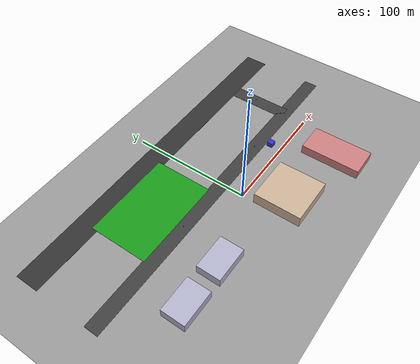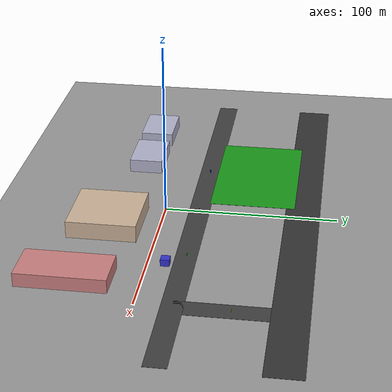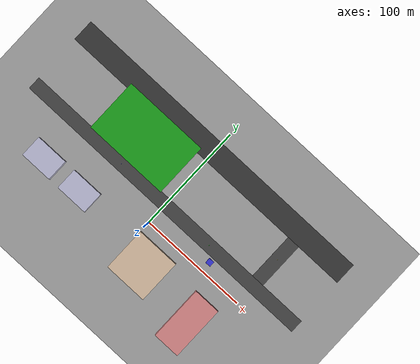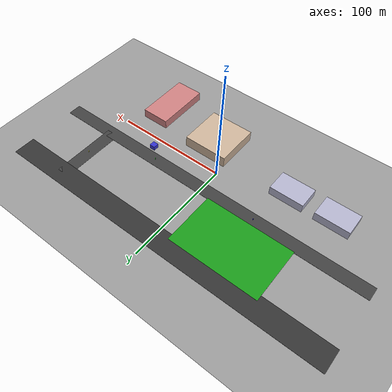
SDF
<?xml version="1.0" ?>
<sdf version="1.6">
  <world name="iiit_hyderabad">
    <scene>
      <ambient>0.4 0.4 0.4 1</ambient>
      <background>0.7 0.7 0.7 1</background>
      <shadows>true</shadows>
    </scene>

    <light name="sun" type="directional">
      <pose>0 0 100 0 0 0</pose>
      <diffuse>0.8 0.8 0.8 1</diffuse>
      <specular>0.2 0.2 0.2 1</specular>
      <direction>-0.5 0.1 -0.9</direction>
      <cast_shadows>true</cast_shadows>
    </light>

    <model name="ground_plane">
      <static>true</static>
      <link name="link">
        <collision name="collision">
          <geometry>
            <plane>
              <normal>0 0 1</normal>
              <size>500 500</size>
            </plane>
          </geometry>
        </collision>
        <visual name="visual">
          <geometry>
            <plane>
              <normal>0 0 1</normal>
              <size>500 500</size>
            </plane>
          </geometry>
          <material>
            <ambient>0.6 0.6 0.6 1</ambient>
            <diffuse>0.6 0.6 0.6 1</diffuse>
            <specular>0.1 0.1 0.1 1</specular>
          </material>
        </visual>
      </link>
    </model>

    <!-- ROADS -->
    <!-- Old Mumbai Highway (Top) -->
    <model name="old_mumbai_hwy">
      <static>true</static>
      <link name="link">
        <pose>0 80 0.05 0 0 0</pose>
        <collision name="collision">
          <geometry>
            <box>
              <size>300 20 0.1</size>
            </box>
          </geometry>
        </collision>
        <visual name="visual">
          <geometry>
            <box>
              <size>300 20 0.1</size>
            </box>
          </geometry>
          <material>
            <ambient>0.2 0.2 0.2 1</ambient>
            <diffuse>0.2 0.2 0.2 1</diffuse>
            <specular>0.1 0.1 0.1 1</specular>
          </material>
        </visual>
      </link>
    </model>

    <!-- IIIT Hyderabad Road (Middle) -->
    <model name="iiit_road">
      <static>true</static>
      <link name="link">
        <pose>0 20 0.05 0 0 0</pose>
        <collision name="collision">
          <geometry>
            <box>
              <size>300 12 0.1</size>
            </box>
          </geometry>
        </collision>
        <visual name="visual">
          <geometry>
            <box>
              <size>300 12 0.1</size>
            </box>
          </geometry>
          <material>
            <ambient>0.25 0.25 0.25 1</ambient>
            <diffuse>0.25 0.25 0.25 1</diffuse>
            <specular>0.1 0.1 0.1 1</specular>
          </material>
        </visual>
      </link>
    </model>

    <!-- Connecting Road East -->
    <model name="conn_road_east">
      <static>true</static>
      <link name="link">
        <pose>100 50 0.05 0 0 0</pose>
        <collision name="collision">
          <geometry>
            <box>
              <size>12 60 0.1</size>
            </box>
          </geometry>
        </collision>
        <visual name="visual">
          <geometry>
            <box>
              <size>12 60 0.1</size>
            </box>
          </geometry>
          <material>
            <ambient>0.25 0.25 0.25 1</ambient>
            <diffuse>0.25 0.25 0.25 1</diffuse>
            <specular>0.1 0.1 0.1 1</specular>
          </material>
        </visual>
      </link>
    </model>

    <!-- GREEN PATCH (Football Ground) -->
    <model name="green_ground">
      <static>true</static>
      <link name="link">
        <pose>-50 50 0.06 0 0 0</pose>
        <collision name="collision">
          <geometry>
            <box>
              <size>80 50 0.1</size>
            </box>
          </geometry>
        </collision>
        <visual name="visual">
          <geometry>
            <box>
              <size>80 50 0.1</size>
            </box>
          </geometry>
          <material>
            <ambient>0.1 0.6 0.1 1</ambient>
            <diffuse>0.1 0.6 0.1 1</diffuse>
            <specular>0.1 0.1 0.1 1</specular>
          </material>
        </visual>
      </link>
    </model>

    <!-- BUILDINGS -->

    <!-- New Main Building -->
    <model name="new_main_building">
      <static>true</static>
      <link name="link">
        <pose>20 -30 5 0 0 0</pose>
        <collision name="collision">
          <geometry>
            <box>
              <size>40 40 10</size>
            </box>
          </geometry>
        </collision>
        <visual name="visual">
          <geometry>
            <box>
              <size>40 40 10</size>
            </box>
          </geometry>
          <material>
            <ambient>0.8 0.7 0.6 1</ambient>
            <diffuse>0.8 0.7 0.6 1</diffuse>
            <specular>0.1 0.1 0.1 1</specular>
          </material>
        </visual>
      </link>
    </model>

    <!-- Vindhya / Nilgiri Blocks (Generic) -->
    <model name="academic_block_1">
      <static>true</static>
      <link name="link">
        <pose>-60 -20 4 0 0 0</pose>
        <collision name="collision">
          <geometry>
            <box>
              <size>30 20 8</size>
            </box>
          </geometry>
        </collision>
        <visual name="visual">
          <geometry>
            <box>
              <size>30 20 8</size>
            </box>
          </geometry>
          <material>
            <ambient>0.7 0.7 0.8 1</ambient>
            <diffuse>0.7 0.7 0.8 1</diffuse>
            <specular>0.1 0.1 0.1 1</specular>
          </material>
        </visual>
      </link>
    </model>

    <model name="academic_block_2">
      <static>true</static>
      <link name="link">
        <pose>-100 -20 4 0 0 0</pose>
        <collision name="collision">
          <geometry>
            <box>
              <size>30 20 8</size>
            </box>
          </geometry>
        </collision>
        <visual name="visual">
          <geometry>
            <box>
              <size>30 20 8</size>
            </box>
          </geometry>
          <material>
            <ambient>0.7 0.7 0.8 1</ambient>
            <diffuse>0.7 0.7 0.8 1</diffuse>
            <specular>0.1 0.1 0.1 1</specular>
          </material>
        </visual>
      </link>
    </model>

    <!-- Hostels or Other Blocks -->
    <model name="hostel_block">
      <static>true</static>
      <link name="link">
        <pose>80 -40 4 0 0 0</pose>
        <collision name="collision">
          <geometry>
            <box>
              <size>25 50 8</size>
            </box>
          </geometry>
        </collision>
        <visual name="visual">
          <geometry>
            <box>
              <size>25 50 8</size>
            </box>
          </geometry>
          <material>
            <ambient>0.8 0.5 0.5 1</ambient>
            <diffuse>0.8 0.5 0.5 1</diffuse>
            <specular>0.1 0.1 0.1 1</specular>
          </material>
        </visual>
      </link>
    </model>

    <!-- Gate / ATM area -->
    <model name="sbi_atm">
      <static>true</static>
      <link name="link">
        <pose>60 10 2 0 0 0</pose>
        <collision name="collision">
          <geometry>
            <box>
              <size>5 5 4</size>
            </box>
          </geometry>
        </collision>
        <visual name="visual">
          <geometry>
            <box>
              <size>5 5 4</size>
            </box>
          </geometry>
          <material>
            <ambient>0.2 0.2 0.8 1</ambient>
            <diffuse>0.2 0.2 0.8 1</diffuse>
            <specular>0.1 0.1 0.1 1</specular>
          </material>
        </visual>
      </link>
    </model>

    <!-- MOVING HUMANS -->
    <!-- We initialize them here, but move_humans.py will control them -->
    <model name="human_moving_1">
      <static>false</static>
      <pose>0 20 1 0 0 0</pose>
      <link name="link">
        <inertial>
          <mass>60.0</mass>
          <inertia>
            <ixx>1</ixx>
            <iyy>1</iyy>
            <izz>1</izz>
          </inertia>
        </inertial>
        <collision name="collision">
          <geometry>
            <cylinder>
              <radius>0.25</radius>
              <length>1.7</length>
            </cylinder>
          </geometry>
        </collision>
        <visual name="visual">
          <geometry>
            <cylinder>
              <radius>0.25</radius>
              <length>1.7</length>
            </cylinder>
          </geometry>
          <material>
            <ambient>0.9 0.1 0.1 1</ambient>
            <diffuse>0.9 0.1 0.1 1</diffuse>
            <specular>0.2 0.2 0.2 1</specular>
          </material>
        </visual>
      </link>
    </model>

    <model name="human_moving_2">
      <static>false</static>
      <pose>50 20 1 0 0 0</pose>
      <link name="link">
        <inertial>
          <mass>60.0</mass>
          <inertia>
            <ixx>1</ixx>
            <iyy>1</iyy>
            <izz>1</izz>
          </inertia>
        </inertial>
        <collision name="collision">
          <geometry>
            <cylinder>
              <radius>0.25</radius>
              <length>1.7</length>
            </cylinder>
          </geometry>
        </collision>
        <visual name="visual">
          <geometry>
            <cylinder>
              <radius>0.25</radius>
              <length>1.7</length>
            </cylinder>
          </geometry>
          <material>
            <ambient>0.1 0.9 0.1 1</ambient>
            <diffuse>0.1 0.9 0.1 1</diffuse>
            <specular>0.2 0.2 0.2 1</specular>
          </material>
        </visual>
      </link>
    </model>

    <model name="human_moving_3">
      <static>false</static>
      <pose>-50 20 1 0 0 0</pose>
      <link name="link">
        <inertial>
          <mass>60.0</mass>
          <inertia>
            <ixx>1</ixx>
            <iyy>1</iyy>
            <izz>1</izz>
          </inertia>
        </inertial>
        <collision name="collision">
          <geometry>
            <cylinder>
              <radius>0.25</radius>
              <length>1.7</length>
            </cylinder>
          </geometry>
        </collision>
        <visual name="visual">
          <geometry>
            <cylinder>
              <radius>0.25</radius>
              <length>1.7</length>
            </cylinder>
          </geometry>
          <material>
            <ambient>0.1 0.1 0.9 1</ambient>
            <diffuse>0.1 0.1 0.9 1</diffuse>
            <specular>0.2 0.2 0.2 1</specular>
          </material>
        </visual>
      </link>
    </model>

    <model name="human_moving_4">
      <static>false</static>
      <pose>100 50 1 0 0 0</pose>
      <link name="link">
        <inertial>
          <mass>60.0</mass>
          <inertia>
            <ixx>1</ixx>
            <iyy>1</iyy>
            <izz>1</izz>
          </inertia>
        </inertial>
        <collision name="collision">
          <geometry>
            <cylinder>
              <radius>0.25</radius>
              <length>1.7</length>
            </cylinder>
          </geometry>
        </collision>
        <visual name="visual">
          <geometry>
            <cylinder>
              <radius>0.25</radius>
              <length>1.7</length>
            </cylinder>
          </geometry>
          <material>
            <ambient>0.9 0.9 0.1 1</ambient>
            <diffuse>0.9 0.9 0.1 1</diffuse>
            <specular>0.2 0.2 0.2 1</specular>
          </material>
        </visual>
      </link>
    </model>

  </world>
</sdf>
